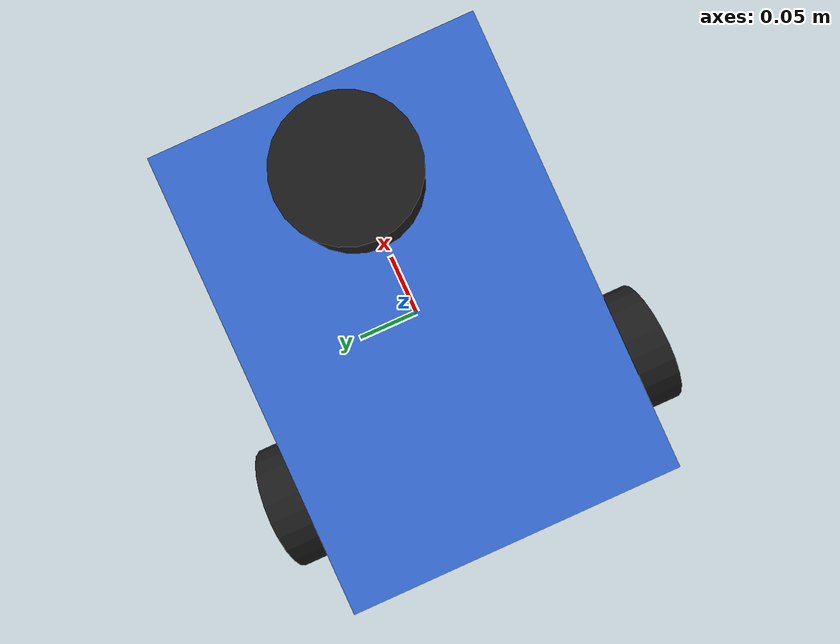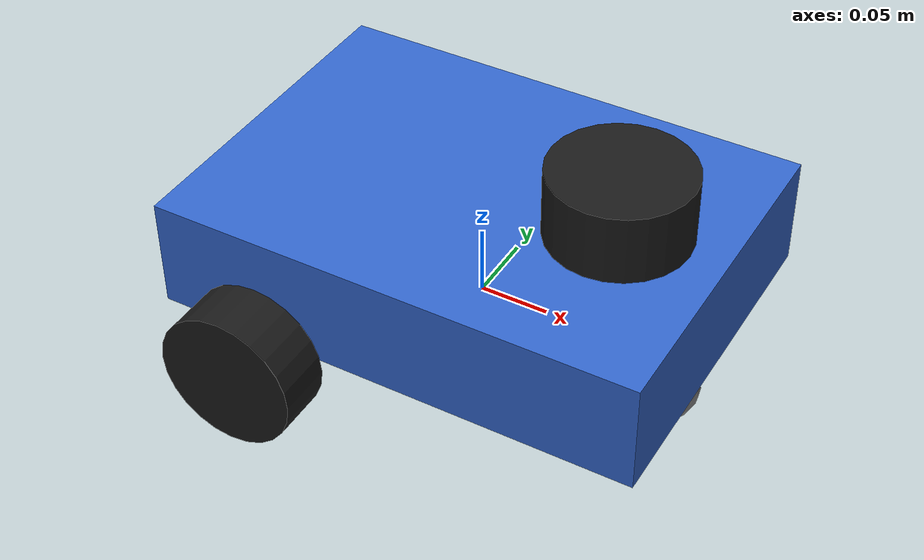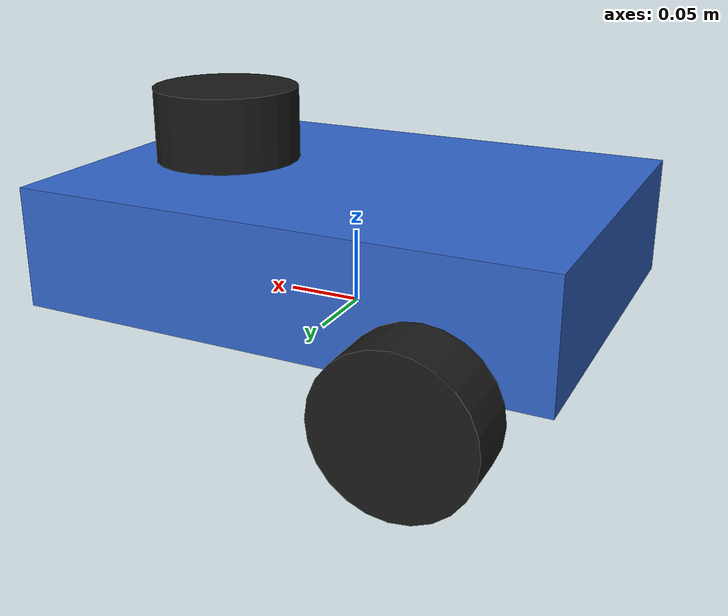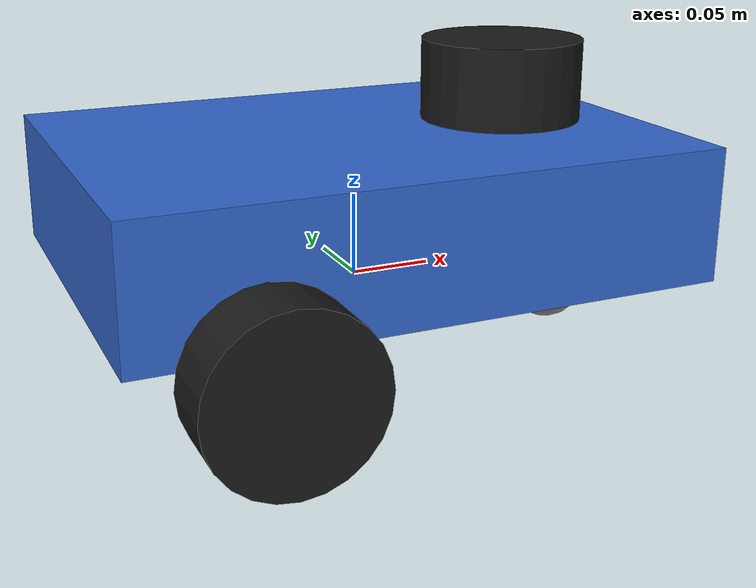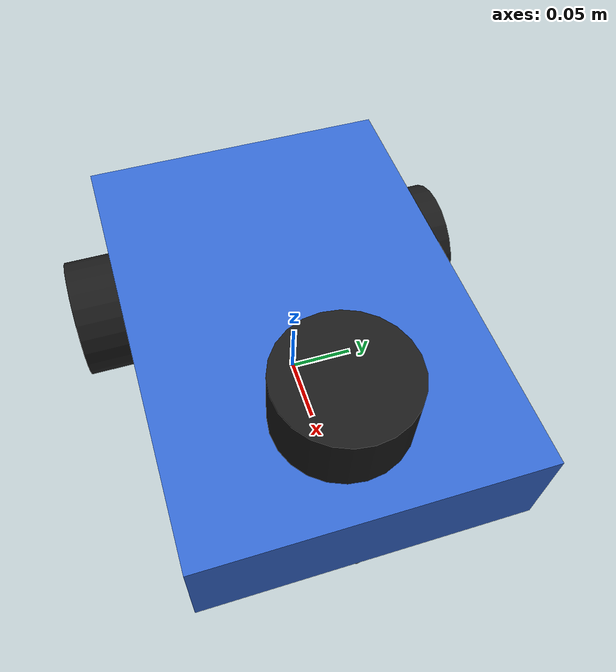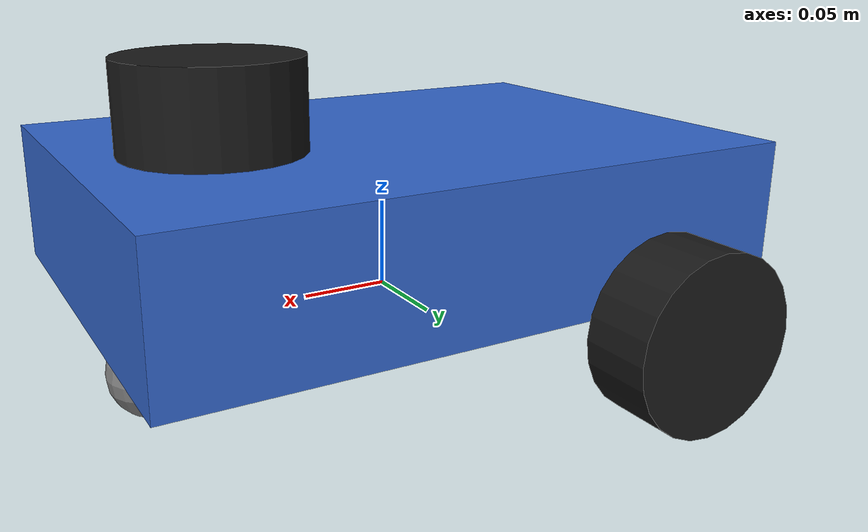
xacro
<?xml version="1.0"?>
<robot name="three_wheel_diff_drive" xmlns:xacro="http://www.ros.org/wiki/xacro">

  <xacro:property name="chassis_length" value="0.35"/>
  <xacro:property name="chassis_width"  value="0.25"/>
  <xacro:property name="chassis_height" value="0.08"/>
  <xacro:property name="chassis_mass"   value="2.0"/>
  <xacro:property name="wheel_radius"   value="0.05"/>
  <xacro:property name="wheel_length"   value="0.04"/>
  <xacro:property name="wheel_mass"     value="0.3"/>
  <xacro:property name="lidar_radius"   value="0.05"/>
  <xacro:property name="lidar_height"   value="0.05"/>

  <material name="blue"><color rgba="0.2 0.4 0.8 1.0"/></material>
  <material name="black"><color rgba="0.1 0.1 0.1 1.0"/></material>
  <material name="grey"><color rgba="0.5 0.5 0.5 1.0"/></material>

  <xacro:macro name="cylinder_inertia" params="m r h">
    <inertial>
      <mass value="${m}"/><origin xyz="0 0 0" rpy="0 0 0"/>
      <inertia ixx="${m/12*(3*r*r+h*h)}" ixy="0" ixz="0" iyy="${m/12*(3*r*r+h*h)}" iyz="0" izz="${m/2*r*r}"/>
    </inertial>
  </xacro:macro>

  <xacro:macro name="box_inertia" params="m x y z">
    <inertial>
      <mass value="${m}"/><origin xyz="0 0 0" rpy="0 0 0"/>
      <inertia ixx="${m/12*(y*y+z*z)}" ixy="0" ixz="0" iyy="${m/12*(x*x+z*z)}" iyz="0" izz="${m/12*(x*x+y*y)}"/>
    </inertial>
  </xacro:macro>

  <link name="base_footprint"/>

  <joint name="base_joint" type="fixed">
    <parent link="base_footprint"/><child link="base_link"/>
    <origin xyz="0 0 0.05" rpy="0 0 0"/>
  </joint>

  <link name="base_link">
    <visual>
      <geometry><box size="${chassis_length} ${chassis_width} ${chassis_height}"/></geometry>
      <material name="blue"/>
    </visual>
    <collision>
      <geometry><box size="${chassis_length} ${chassis_width} ${chassis_height}"/></geometry>
    </collision>
    <xacro:box_inertia m="${chassis_mass}" x="${chassis_length}" y="${chassis_width}" z="${chassis_height}"/>
  </link>

  <xacro:macro name="wheel" params="prefix y_reflect">
    <link name="${prefix}_wheel">
      <visual>
        <origin xyz="0 0 0" rpy="${pi/2} 0 0"/>
        <geometry><cylinder radius="${wheel_radius}" length="${wheel_length}"/></geometry>
        <material name="black"/>
      </visual>
      <collision>
        <origin xyz="0 0 0" rpy="${pi/2} 0 0"/>
        <geometry><cylinder radius="${wheel_radius}" length="${wheel_length}"/></geometry>
      </collision>
      <xacro:cylinder_inertia m="${wheel_mass}" r="${wheel_radius}" h="${wheel_length}"/>
    </link>
    <joint name="${prefix}_wheel_joint" type="continuous">
      <parent link="base_link"/><child link="${prefix}_wheel"/>
      <origin xyz="-0.10 ${y_reflect * 0.145} -0.05" rpy="0 0 0"/>
      <axis xyz="0 1 0"/>
    </joint>
  </xacro:macro>

  <xacro:wheel prefix="left" y_reflect="1"/>
  <xacro:wheel prefix="right" y_reflect="-1"/>

  <link name="caster_wheel">
    <visual><geometry><sphere radius="0.025"/></geometry><material name="grey"/></visual>
    <collision><geometry><sphere radius="0.025"/></geometry></collision>
    <inertial><mass value="0.1"/><inertia ixx="0.0001" ixy="0" ixz="0" iyy="0.0001" iyz="0" izz="0.0001"/></inertial>
  </link>
  <joint name="caster_joint" type="fixed">
    <parent link="base_link"/><child link="caster_wheel"/>
    <origin xyz="0.14 0 -0.075" rpy="0 0 0"/>
  </joint>

  <link name="laser_frame">
    <visual>
      <geometry><cylinder radius="${lidar_radius}" length="${lidar_height}"/></geometry>
      <material name="black"/>
    </visual>
    <collision>
      <geometry><cylinder radius="${lidar_radius}" length="${lidar_height}"/></geometry>
    </collision>
    <xacro:cylinder_inertia m="0.1" r="${lidar_radius}" h="${lidar_height}"/>
  </link>

  <joint name="laser_joint" type="fixed">
    <parent link="base_link"/><child link="laser_frame"/>
    <origin xyz="0.1 0 ${chassis_height/2 + lidar_height/2}" rpy="0 0 0"/>
  </joint>

  <gazebo reference="laser_frame">
    <sensor type="ray" name="head_hokuyo_sensor">
      <pose>0 0 0 0 0 0</pose>
      <visualize>true</visualize>
      <update_rate>40</update_rate>
      <ray>
        <scan><horizontal><samples>360</samples><resolution>1</resolution><min_angle>-3.14</min_angle><max_angle>3.14</max_angle></horizontal></scan>
        <range><min>0.10</min><max>12.0</max><resolution>0.01</resolution></range>
      </ray>
      <plugin name="gazebo_ros_head_hokuyo_controller" filename="libgazebo_ros_laser.so">
  <topicName>/three_wheel_diff_drive/scan</topicName>

  <frameName>laser_frame</frameName>
</plugin>
    </sensor>
  </gazebo>

  <gazebo>
    <plugin name="differential_drive_controller" filename="libgazebo_ros_diff_drive.so">
      <leftJoint>left_wheel_joint</leftJoint>
      <rightJoint>right_wheel_joint</rightJoint>
      <wheelSeparation>0.29</wheelSeparation>
      <wheelDiameter>0.1</wheelDiameter>
      <torque>10</torque>
      <commandTopic>cmd_vel</commandTopic>
      <odometryTopic>odom</odometryTopic>
      <odometryFrame>odom</odometryFrame>
      <robotBaseFrame>base_footprint</robotBaseFrame>
      <publishWheelTF>true</publishWheelTF>
      <publishOdomTF>true</publishOdomTF>
    </plugin>
  </gazebo>

</robot>
